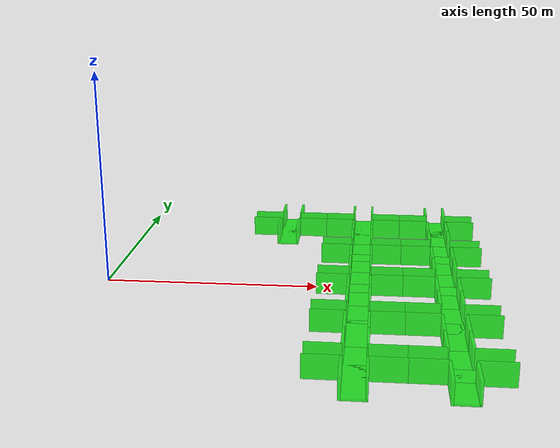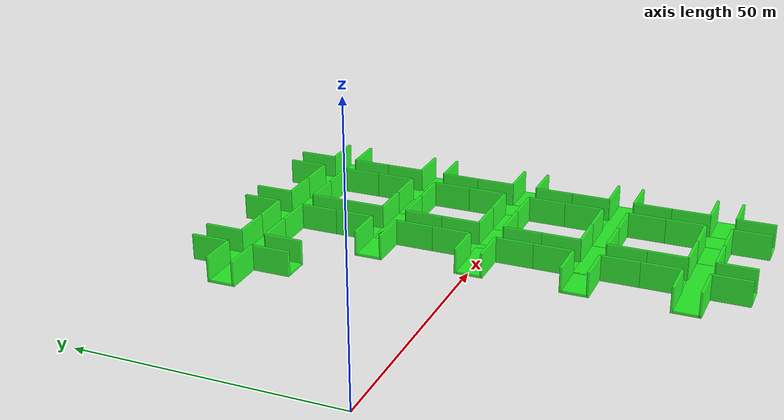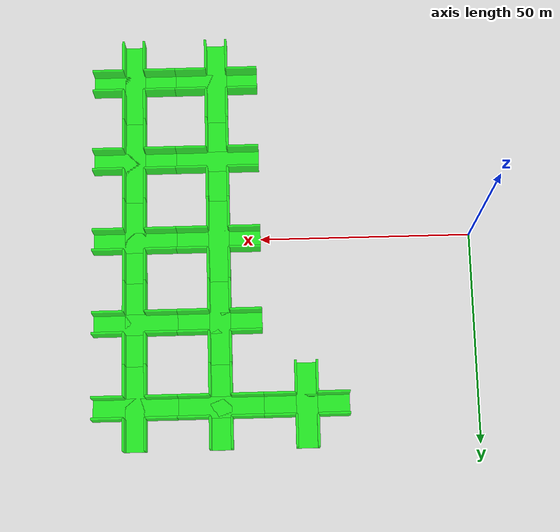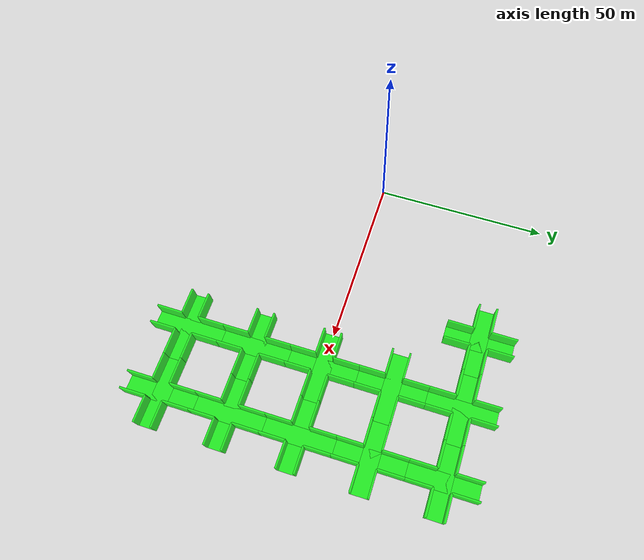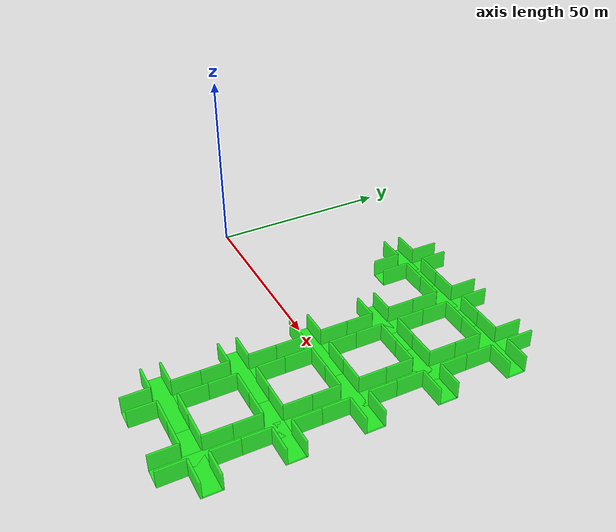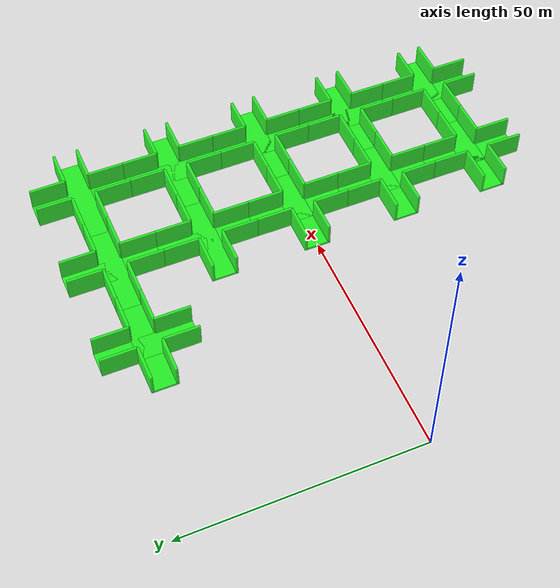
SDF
<sdf version="1.6">
 <world name="default">
  <model name="tile_10">
   <pose>40 40 0 0 0 0</pose>
   <static>true</static>
   <link name="link">
    <collision name="collision_0">
     <pose>0 0 -0.25 0 0 0</pose>
     <geometry><box><size>5 20 0.5</size></box></geometry>
    </collision>
    <visual name="visual_0">
     <pose>0 0 -0.25 0 0 0</pose>
     <geometry><box><size>5 20 0.5</size></box></geometry>
     <material><ambient>0 1 0 0.8</ambient><diffuse>0 1 0 0.8</diffuse><specular>1 1 1 0.8</specular></material>
    </visual>
    <collision name="collision_1">
     <pose>0 0 -0.25 0 0 1.57</pose>
     <geometry><box><size>5 20 0.5</size></box></geometry>
    </collision>
    <visual name="visual_1">
     <pose>0 0 -0.25 0 0 1.57</pose>
     <geometry><box><size>5 20 0.5</size></box></geometry>
     <material><ambient>0 1 0 0.8</ambient><diffuse>0 1 0 0.8</diffuse><specular>1 1 1 0.8</specular></material>
    </visual>
    <collision name="collision_2">
     <pose>-2.5 6.25 2 3.14 -1.57 0</pose>
     <geometry><box><size>5 7.5 0.5</size></box></geometry>
    </collision>
    <visual name="visual_2">
     <pose>-2.5 6.25 2 3.14 -1.57 0</pose>
     <geometry><box><size>5 7.5 0.5</size></box></geometry>
     <material><ambient>0 1 0 0.8</ambient><diffuse>0 1 0 0.8</diffuse><specular>1 1 1 0.8</specular></material>
    </visual>
    <collision name="collision_3">
     <pose>2.5 6.25 2 3.14 -1.57 0</pose>
     <geometry><box><size>5 7.5 0.5</size></box></geometry>
    </collision>
    <visual name="visual_3">
     <pose>2.5 6.25 2 3.14 -1.57 0</pose>
     <geometry><box><size>5 7.5 0.5</size></box></geometry>
     <material><ambient>0 1 0 0.8</ambient><diffuse>0 1 0 0.8</diffuse><specular>1 1 1 0.8</specular></material>
    </visual>
    <collision name="collision_4">
     <pose>-2.5 -6.25 2 3.14 -1.57 0</pose>
     <geometry><box><size>5 7.5 0.5</size></box></geometry>
    </collision>
    <visual name="visual_4">
     <pose>-2.5 -6.25 2 3.14 -1.57 0</pose>
     <geometry><box><size>5 7.5 0.5</size></box></geometry>
     <material><ambient>0 1 0 0.8</ambient><diffuse>0 1 0 0.8</diffuse><specular>1 1 1 0.8</specular></material>
    </visual>
    <collision name="collision_5">
     <pose>2.5 -6.25 2 3.14 -1.57 0</pose>
     <geometry><box><size>5 7.5 0.5</size></box></geometry>
    </collision>
    <visual name="visual_5">
     <pose>2.5 -6.25 2 3.14 -1.57 0</pose>
     <geometry><box><size>5 7.5 0.5</size></box></geometry>
     <material><ambient>0 1 0 0.8</ambient><diffuse>0 1 0 0.8</diffuse><specular>1 1 1 0.8</specular></material>
    </visual>
    <collision name="collision_6">
     <pose>6.25 2.5 2 1.57 1.57 0</pose>
     <geometry><box><size>5 7.5 0.5</size></box></geometry>
    </collision>
    <visual name="visual_6">
     <pose>6.25 2.5 2 1.57 1.57 0</pose>
     <geometry><box><size>5 7.5 0.5</size></box></geometry>
     <material><ambient>0 1 0 0.8</ambient><diffuse>0 1 0 0.8</diffuse><specular>1 1 1 0.8</specular></material>
    </visual>
    <collision name="collision_7">
     <pose>-6.25 2.5 2 1.57 1.57 0</pose>
     <geometry><box><size>5 7.5 0.5</size></box></geometry>
    </collision>
    <visual name="visual_7">
     <pose>-6.25 2.5 2 1.57 1.57 0</pose>
     <geometry><box><size>5 7.5 0.5</size></box></geometry>
     <material><ambient>0 1 0 0.8</ambient><diffuse>0 1 0 0.8</diffuse><specular>1 1 1 0.8</specular></material>
    </visual>
    <collision name="collision_8">
     <pose>6.25 -2.5 2 1.57 1.57 0</pose>
     <geometry><box><size>5 7.5 0.5</size></box></geometry>
    </collision>
    <visual name="visual_8">
     <pose>6.25 -2.5 2 1.57 1.57 0</pose>
     <geometry><box><size>5 7.5 0.5</size></box></geometry>
     <material><ambient>0 1 0 0.8</ambient><diffuse>0 1 0 0.8</diffuse><specular>1 1 1 0.8</specular></material>
    </visual>
    <collision name="collision_9">
     <pose>-6.25 -2.5 2 1.57 1.57 0</pose>
     <geometry><box><size>5 7.5 0.5</size></box></geometry>
    </collision>
    <visual name="visual_9">
     <pose>-6.25 -2.5 2 1.57 1.57 0</pose>
     <geometry><box><size>5 7.5 0.5</size></box></geometry>
     <material><ambient>0 1 0 0.8</ambient><diffuse>0 1 0 0.8</diffuse><specular>1 1 1 0.8</specular></material>
    </visual>
   </link>
  </model>
  <model name="tile_11">
   <pose>60 -40 0 0 0 3.141592653589793</pose>
   <static>true</static>
   <link name="link">
    <collision name="collision_0">
     <pose>0 0 -0.25 0 0 0</pose>
     <geometry><box><size>5 20 0.5</size></box></geometry>
    </collision>
    <visual name="visual_0">
     <pose>0 0 -0.25 0 0 0</pose>
     <geometry><box><size>5 20 0.5</size></box></geometry>
     <material><ambient>0 1 0 0.8</ambient><diffuse>0 1 0 0.8</diffuse><specular>1 1 1 0.8</specular></material>
    </visual>
    <collision name="collision_1">
     <pose>0 0 -0.25 0 0 1.57</pose>
     <geometry><box><size>5 20 0.5</size></box></geometry>
    </collision>
    <visual name="visual_1">
     <pose>0 0 -0.25 0 0 1.57</pose>
     <geometry><box><size>5 20 0.5</size></box></geometry>
     <material><ambient>0 1 0 0.8</ambient><diffuse>0 1 0 0.8</diffuse><specular>1 1 1 0.8</specular></material>
    </visual>
    <collision name="collision_2">
     <pose>-2.5 6.25 2 3.14 -1.57 0</pose>
     <geometry><box><size>5 7.5 0.5</size></box></geometry>
    </collision>
    <visual name="visual_2">
     <pose>-2.5 6.25 2 3.14 -1.57 0</pose>
     <geometry><box><size>5 7.5 0.5</size></box></geometry>
     <material><ambient>0 1 0 0.8</ambient><diffuse>0 1 0 0.8</diffuse><specular>1 1 1 0.8</specular></material>
    </visual>
    <collision name="collision_3">
     <pose>2.5 6.25 2 3.14 -1.57 0</pose>
     <geometry><box><size>5 7.5 0.5</size></box></geometry>
    </collision>
    <visual name="visual_3">
     <pose>2.5 6.25 2 3.14 -1.57 0</pose>
     <geometry><box><size>5 7.5 0.5</size></box></geometry>
     <material><ambient>0 1 0 0.8</ambient><diffuse>0 1 0 0.8</diffuse><specular>1 1 1 0.8</specular></material>
    </visual>
    <collision name="collision_4">
     <pose>-2.5 -6.25 2 3.14 -1.57 0</pose>
     <geometry><box><size>5 7.5 0.5</size></box></geometry>
    </collision>
    <visual name="visual_4">
     <pose>-2.5 -6.25 2 3.14 -1.57 0</pose>
     <geometry><box><size>5 7.5 0.5</size></box></geometry>
     <material><ambient>0 1 0 0.8</ambient><diffuse>0 1 0 0.8</diffuse><specular>1 1 1 0.8</specular></material>
    </visual>
    <collision name="collision_5">
     <pose>2.5 -6.25 2 3.14 -1.57 0</pose>
     <geometry><box><size>5 7.5 0.5</size></box></geometry>
    </collision>
    <visual name="visual_5">
     <pose>2.5 -6.25 2 3.14 -1.57 0</pose>
     <geometry><box><size>5 7.5 0.5</size></box></geometry>
     <material><ambient>0 1 0 0.8</ambient><diffuse>0 1 0 0.8</diffuse><specular>1 1 1 0.8</specular></material>
    </visual>
    <collision name="collision_6">
     <pose>6.25 2.5 2 1.57 1.57 0</pose>
     <geometry><box><size>5 7.5 0.5</size></box></geometry>
    </collision>
    <visual name="visual_6">
     <pose>6.25 2.5 2 1.57 1.57 0</pose>
     <geometry><box><size>5 7.5 0.5</size></box></geometry>
     <material><ambient>0 1 0 0.8</ambient><diffuse>0 1 0 0.8</diffuse><specular>1 1 1 0.8</specular></material>
    </visual>
    <collision name="collision_7">
     <pose>-6.25 2.5 2 1.57 1.57 0</pose>
     <geometry><box><size>5 7.5 0.5</size></box></geometry>
    </collision>
    <visual name="visual_7">
     <pose>-6.25 2.5 2 1.57 1.57 0</pose>
     <geometry><box><size>5 7.5 0.5</size></box></geometry>
     <material><ambient>0 1 0 0.8</ambient><diffuse>0 1 0 0.8</diffuse><specular>1 1 1 0.8</specular></material>
    </visual>
    <collision name="collision_8">
     <pose>6.25 -2.5 2 1.57 1.57 0</pose>
     <geometry><box><size>5 7.5 0.5</size></box></geometry>
    </collision>
    <visual name="visual_8">
     <pose>6.25 -2.5 2 1.57 1.57 0</pose>
     <geometry><box><size>5 7.5 0.5</size></box></geometry>
     <material><ambient>0 1 0 0.8</ambient><diffuse>0 1 0 0.8</diffuse><specular>1 1 1 0.8</specular></material>
    </visual>
    <collision name="collision_9">
     <pose>-6.25 -2.5 2 1.57 1.57 0</pose>
     <geometry><box><size>5 7.5 0.5</size></box></geometry>
    </collision>
    <visual name="visual_9">
     <pose>-6.25 -2.5 2 1.57 1.57 0</pose>
     <geometry><box><size>5 7.5 0.5</size></box></geometry>
     <material><ambient>0 1 0 0.8</ambient><diffuse>0 1 0 0.8</diffuse><specular>1 1 1 0.8</specular></material>
    </visual>
   </link>
  </model>
  <model name="tile_12">
   <pose>60 -20 0 0 0 1.5707963267948966</pose>
   <static>true</static>
   <link name="link">
    <collision name="collision_0">
     <pose>0 0 -0.25 0 0 0</pose>
     <geometry><box><size>5 20 0.5</size></box></geometry>
    </collision>
    <visual name="visual_0">
     <pose>0 0 -0.25 0 0 0</pose>
     <geometry><box><size>5 20 0.5</size></box></geometry>
     <material><ambient>0 1 0 0.8</ambient><diffuse>0 1 0 0.8</diffuse><specular>1 1 1 0.8</specular></material>
    </visual>
    <collision name="collision_1">
     <pose>0 0 -0.25 0 0 1.57</pose>
     <geometry><box><size>5 20 0.5</size></box></geometry>
    </collision>
    <visual name="visual_1">
     <pose>0 0 -0.25 0 0 1.57</pose>
     <geometry><box><size>5 20 0.5</size></box></geometry>
     <material><ambient>0 1 0 0.8</ambient><diffuse>0 1 0 0.8</diffuse><specular>1 1 1 0.8</specular></material>
    </visual>
    <collision name="collision_2">
     <pose>-2.5 6.25 2 3.14 -1.57 0</pose>
     <geometry><box><size>5 7.5 0.5</size></box></geometry>
    </collision>
    <visual name="visual_2">
     <pose>-2.5 6.25 2 3.14 -1.57 0</pose>
     <geometry><box><size>5 7.5 0.5</size></box></geometry>
     <material><ambient>0 1 0 0.8</ambient><diffuse>0 1 0 0.8</diffuse><specular>1 1 1 0.8</specular></material>
    </visual>
    <collision name="collision_3">
     <pose>2.5 6.25 2 3.14 -1.57 0</pose>
     <geometry><box><size>5 7.5 0.5</size></box></geometry>
    </collision>
    <visual name="visual_3">
     <pose>2.5 6.25 2 3.14 -1.57 0</pose>
     <geometry><box><size>5 7.5 0.5</size></box></geometry>
     <material><ambient>0 1 0 0.8</ambient><diffuse>0 1 0 0.8</diffuse><specular>1 1 1 0.8</specular></material>
    </visual>
    <collision name="collision_4">
     <pose>-2.5 -6.25 2 3.14 -1.57 0</pose>
     <geometry><box><size>5 7.5 0.5</size></box></geometry>
    </collision>
    <visual name="visual_4">
     <pose>-2.5 -6.25 2 3.14 -1.57 0</pose>
     <geometry><box><size>5 7.5 0.5</size></box></geometry>
     <material><ambient>0 1 0 0.8</ambient><diffuse>0 1 0 0.8</diffuse><specular>1 1 1 0.8</specular></material>
    </visual>
    <collision name="collision_5">
     <pose>2.5 -6.25 2 3.14 -1.57 0</pose>
     <geometry><box><size>5 7.5 0.5</size></box></geometry>
    </collision>
    <visual name="visual_5">
     <pose>2.5 -6.25 2 3.14 -1.57 0</pose>
     <geometry><box><size>5 7.5 0.5</size></box></geometry>
     <material><ambient>0 1 0 0.8</ambient><diffuse>0 1 0 0.8</diffuse><specular>1 1 1 0.8</specular></material>
    </visual>
    <collision name="collision_6">
     <pose>6.25 2.5 2 1.57 1.57 0</pose>
     <geometry><box><size>5 7.5 0.5</size></box></geometry>
    </collision>
    <visual name="visual_6">
     <pose>6.25 2.5 2 1.57 1.57 0</pose>
     <geometry><box><size>5 7.5 0.5</size></box></geometry>
     <material><ambient>0 1 0 0.8</ambient><diffuse>0 1 0 0.8</diffuse><specular>1 1 1 0.8</specular></material>
    </visual>
    <collision name="collision_7">
     <pose>-6.25 2.5 2 1.57 1.57 0</pose>
     <geometry><box><size>5 7.5 0.5</size></box></geometry>
    </collision>
    <visual name="visual_7">
     <pose>-6.25 2.5 2 1.57 1.57 0</pose>
     <geometry><box><size>5 7.5 0.5</size></box></geometry>
     <material><ambient>0 1 0 0.8</ambient><diffuse>0 1 0 0.8</diffuse><specular>1 1 1 0.8</specular></material>
    </visual>
    <collision name="collision_8">
     <pose>6.25 -2.5 2 1.57 1.57 0</pose>
     <geometry><box><size>5 7.5 0.5</size></box></geometry>
    </collision>
    <visual name="visual_8">
     <pose>6.25 -2.5 2 1.57 1.57 0</pose>
     <geometry><box><size>5 7.5 0.5</size></box></geometry>
     <material><ambient>0 1 0 0.8</ambient><diffuse>0 1 0 0.8</diffuse><specular>1 1 1 0.8</specular></material>
    </visual>
    <collision name="collision_9">
     <pose>-6.25 -2.5 2 1.57 1.57 0</pose>
     <geometry><box><size>5 7.5 0.5</size></box></geometry>
    </collision>
    <visual name="visual_9">
     <pose>-6.25 -2.5 2 1.57 1.57 0</pose>
     <geometry><box><size>5 7.5 0.5</size></box></geometry>
     <material><ambient>0 1 0 0.8</ambient><diffuse>0 1 0 0.8</diffuse><specular>1 1 1 0.8</specular></material>
    </visual>
   </link>
  </model>
  <model name="tile_13">
   <pose>60 0 0 0 0 -1.5707963267948966</pose>
   <static>true</static>
   <link name="link">
    <collision name="collision_0">
     <pose>0 0 -0.25 0 0 0</pose>
     <geometry><box><size>5 20 0.5</size></box></geometry>
    </collision>
    <visual name="visual_0">
     <pose>0 0 -0.25 0 0 0</pose>
     <geometry><box><size>5 20 0.5</size></box></geometry>
     <material><ambient>0 1 0 0.8</ambient><diffuse>0 1 0 0.8</diffuse><specular>1 1 1 0.8</specular></material>
    </visual>
    <collision name="collision_1">
     <pose>0 0 -0.25 0 0 1.57</pose>
     <geometry><box><size>5 20 0.5</size></box></geometry>
    </collision>
    <visual name="visual_1">
     <pose>0 0 -0.25 0 0 1.57</pose>
     <geometry><box><size>5 20 0.5</size></box></geometry>
     <material><ambient>0 1 0 0.8</ambient><diffuse>0 1 0 0.8</diffuse><specular>1 1 1 0.8</specular></material>
    </visual>
    <collision name="collision_2">
     <pose>-2.5 6.25 2 3.14 -1.57 0</pose>
     <geometry><box><size>5 7.5 0.5</size></box></geometry>
    </collision>
    <visual name="visual_2">
     <pose>-2.5 6.25 2 3.14 -1.57 0</pose>
     <geometry><box><size>5 7.5 0.5</size></box></geometry>
     <material><ambient>0 1 0 0.8</ambient><diffuse>0 1 0 0.8</diffuse><specular>1 1 1 0.8</specular></material>
    </visual>
    <collision name="collision_3">
     <pose>2.5 6.25 2 3.14 -1.57 0</pose>
     <geometry><box><size>5 7.5 0.5</size></box></geometry>
    </collision>
    <visual name="visual_3">
     <pose>2.5 6.25 2 3.14 -1.57 0</pose>
     <geometry><box><size>5 7.5 0.5</size></box></geometry>
     <material><ambient>0 1 0 0.8</ambient><diffuse>0 1 0 0.8</diffuse><specular>1 1 1 0.8</specular></material>
    </visual>
    <collision name="collision_4">
     <pose>-2.5 -6.25 2 3.14 -1.57 0</pose>
     <geometry><box><size>5 7.5 0.5</size></box></geometry>
    </collision>
    <visual name="visual_4">
     <pose>-2.5 -6.25 2 3.14 -1.57 0</pose>
     <geometry><box><size>5 7.5 0.5</size></box></geometry>
     <material><ambient>0 1 0 0.8</ambient><diffuse>0 1 0 0.8</diffuse><specular>1 1 1 0.8</specular></material>
    </visual>
    <collision name="collision_5">
     <pose>2.5 -6.25 2 3.14 -1.57 0</pose>
     <geometry><box><size>5 7.5 0.5</size></box></geometry>
    </collision>
    <visual name="visual_5">
     <pose>2.5 -6.25 2 3.14 -1.57 0</pose>
     <geometry><box><size>5 7.5 0.5</size></box></geometry>
     <material><ambient>0 1 0 0.8</ambient><diffuse>0 1 0 0.8</diffuse><specular>1 1 1 0.8</specular></material>
    </visual>
    <collision name="collision_6">
     <pose>6.25 2.5 2 1.57 1.57 0</pose>
     <geometry><box><size>5 7.5 0.5</size></box></geometry>
    </collision>
    <visual name="visual_6">
     <pose>6.25 2.5 2 1.57 1.57 0</pose>
     <geometry><box><size>5 7.5 0.5</size></box></geometry>
     <material><ambient>0 1 0 0.8</ambient><diffuse>0 1 0 0.8</diffuse><specular>1 1 1 0.8</specular></material>
    </visual>
    <collision name="collision_7">
     <pose>-6.25 2.5 2 1.57 1.57 0</pose>
     <geometry><box><size>5 7.5 0.5</size></box></geometry>
    </collision>
    <visual name="visual_7">
     <pose>-6.25 2.5 2 1.57 1.57 0</pose>
     <geometry><box><size>5 7.5 0.5</size></box></geometry>
     <material><ambient>0 1 0 0.8</ambient><diffuse>0 1 0 0.8</diffuse><specular>1 1 1 0.8</specular></material>
    </visual>
    <collision name="collision_8">
     <pose>6.25 -2.5 2 1.57 1.57 0</pose>
     <geometry><box><size>5 7.5 0.5</size></box></geometry>
    </collision>
    <visual name="visual_8">
     <pose>6.25 -2.5 2 1.57 1.57 0</pose>
     <geometry><box><size>5 7.5 0.5</size></box></geometry>
     <material><ambient>0 1 0 0.8</ambient><diffuse>0 1 0 0.8</diffuse><specular>1 1 1 0.8</specular></material>
    </visual>
    <collision name="collision_9">
     <pose>-6.25 -2.5 2 1.57 1.57 0</pose>
     <geometry><box><size>5 7.5 0.5</size></box></geometry>
    </collision>
    <visual name="visual_9">
     <pose>-6.25 -2.5 2 1.57 1.57 0</pose>
     <geometry><box><size>5 7.5 0.5</size></box></geometry>
     <material><ambient>0 1 0 0.8</ambient><diffuse>0 1 0 0.8</diffuse><specular>1 1 1 0.8</specular></material>
    </visual>
   </link>
  </model>
  <model name="tile_14">
   <pose>60 20 0 0 0 0</pose>
   <static>true</static>
   <link name="link">
    <collision name="collision_0">
     <pose>0 0 -0.25 0 0 0</pose>
     <geometry><box><size>5 20 0.5</size></box></geometry>
    </collision>
    <visual name="visual_0">
     <pose>0 0 -0.25 0 0 0</pose>
     <geometry><box><size>5 20 0.5</size></box></geometry>
     <material><ambient>0 1 0 0.8</ambient><diffuse>0 1 0 0.8</diffuse><specular>1 1 1 0.8</specular></material>
    </visual>
    <collision name="collision_1">
     <pose>0 0 -0.25 0 0 1.57</pose>
     <geometry><box><size>5 20 0.5</size></box></geometry>
    </collision>
    <visual name="visual_1">
     <pose>0 0 -0.25 0 0 1.57</pose>
     <geometry><box><size>5 20 0.5</size></box></geometry>
     <material><ambient>0 1 0 0.8</ambient><diffuse>0 1 0 0.8</diffuse><specular>1 1 1 0.8</specular></material>
    </visual>
    <collision name="collision_2">
     <pose>-2.5 6.25 2 3.14 -1.57 0</pose>
     <geometry><box><size>5 7.5 0.5</size></box></geometry>
    </collision>
    <visual name="visual_2">
     <pose>-2.5 6.25 2 3.14 -1.57 0</pose>
     <geometry><box><size>5 7.5 0.5</size></box></geometry>
     <material><ambient>0 1 0 0.8</ambient><diffuse>0 1 0 0.8</diffuse><specular>1 1 1 0.8</specular></material>
    </visual>
    <collision name="collision_3">
     <pose>2.5 6.25 2 3.14 -1.57 0</pose>
     <geometry><box><size>5 7.5 0.5</size></box></geometry>
    </collision>
    <visual name="visual_3">
     <pose>2.5 6.25 2 3.14 -1.57 0</pose>
     <geometry><box><size>5 7.5 0.5</size></box></geometry>
     <material><ambient>0 1 0 0.8</ambient><diffuse>0 1 0 0.8</diffuse><specular>1 1 1 0.8</specular></material>
    </visual>
    <collision name="collision_4">
     <pose>-2.5 -6.25 2 3.14 -1.57 0</pose>
     <geometry><box><size>5 7.5 0.5</size></box></geometry>
    </collision>
    <visual name="visual_4">
     <pose>-2.5 -6.25 2 3.14 -1.57 0</pose>
     <geometry><box><size>5 7.5 0.5</size></box></geometry>
     <material><ambient>0 1 0 0.8</ambient><diffuse>0 1 0 0.8</diffuse><specular>1 1 1 0.8</specular></material>
    </visual>
    <collision name="collision_5">
     <pose>2.5 -6.25 2 3.14 -1.57 0</pose>
     <geometry><box><size>5 7.5 0.5</size></box></geometry>
    </collision>
    <visual name="visual_5">
     <pose>2.5 -6.25 2 3.14 -1.57 0</pose>
     <geometry><box><size>5 7.5 0.5</size></box></geometry>
     <material><ambient>0 1 0 0.8</ambient><diffuse>0 1 0 0.8</diffuse><specular>1 1 1 0.8</specular></material>
    </visual>
    <collision name="collision_6">
     <pose>6.25 2.5 2 1.57 1.57 0</pose>
     <geometry><box><size>5 7.5 0.5</size></box></geometry>
    </collision>
    <visual name="visual_6">
     <pose>6.25 2.5 2 1.57 1.57 0</pose>
     <geometry><box><size>5 7.5 0.5</size></box></geometry>
     <material><ambient>0 1 0 0.8</ambient><diffuse>0 1 0 0.8</diffuse><specular>1 1 1 0.8</specular></material>
    </visual>
    <collision name="collision_7">
     <pose>-6.25 2.5 2 1.57 1.57 0</pose>
     <geometry><box><size>5 7.5 0.5</size></box></geometry>
    </collision>
    <visual name="visual_7">
     <pose>-6.25 2.5 2 1.57 1.57 0</pose>
     <geometry><box><size>5 7.5 0.5</size></box></geometry>
     <material><ambient>0 1 0 0.8</ambient><diffuse>0 1 0 0.8</diffuse><specular>1 1 1 0.8</specular></material>
    </visual>
    <collision name="collision_8">
     <pose>6.25 -2.5 2 1.57 1.57 0</pose>
     <geometry><box><size>5 7.5 0.5</size></box></geometry>
    </collision>
    <visual name="visual_8">
     <pose>6.25 -2.5 2 1.57 1.57 0</pose>
     <geometry><box><size>5 7.5 0.5</size></box></geometry>
     <material><ambient>0 1 0 0.8</ambient><diffuse>0 1 0 0.8</diffuse><specular>1 1 1 0.8</specular></material>
    </visual>
    <collision name="collision_9">
     <pose>-6.25 -2.5 2 1.57 1.57 0</pose>
     <geometry><box><size>5 7.5 0.5</size></box></geometry>
    </collision>
    <visual name="visual_9">
     <pose>-6.25 -2.5 2 1.57 1.57 0</pose>
     <geometry><box><size>5 7.5 0.5</size></box></geometry>
     <material><ambient>0 1 0 0.8</ambient><diffuse>0 1 0 0.8</diffuse><specular>1 1 1 0.8</specular></material>
    </visual>
   </link>
  </model>
  <model name="tile_15">
   <pose>60 40 0 0 0 0</pose>
   <static>true</static>
   <link name="link">
    <collision name="collision_0">
     <pose>0 0 -0.25 0 0 0</pose>
     <geometry><box><size>5 20 0.5</size></box></geometry>
    </collision>
    <visual name="visual_0">
     <pose>0 0 -0.25 0 0 0</pose>
     <geometry><box><size>5 20 0.5</size></box></geometry>
     <material><ambient>0 1 0 0.8</ambient><diffuse>0 1 0 0.8</diffuse><specular>1 1 1 0.8</specular></material>
    </visual>
    <collision name="collision_1">
     <pose>0 0 -0.25 0 0 1.57</pose>
     <geometry><box><size>5 20 0.5</size></box></geometry>
    </collision>
    <visual name="visual_1">
     <pose>0 0 -0.25 0 0 1.57</pose>
     <geometry><box><size>5 20 0.5</size></box></geometry>
     <material><ambient>0 1 0 0.8</ambient><diffuse>0 1 0 0.8</diffuse><specular>1 1 1 0.8</specular></material>
    </visual>
    <collision name="collision_2">
     <pose>-2.5 6.25 2 3.14 -1.57 0</pose>
     <geometry><box><size>5 7.5 0.5</size></box></geometry>
    </collision>
    <visual name="visual_2">
     <pose>-2.5 6.25 2 3.14 -1.57 0</pose>
     <geometry><box><size>5 7.5 0.5</size></box></geometry>
     <material><ambient>0 1 0 0.8</ambient><diffuse>0 1 0 0.8</diffuse><specular>1 1 1 0.8</specular></material>
    </visual>
    <collision name="collision_3">
     <pose>2.5 6.25 2 3.14 -1.57 0</pose>
     <geometry><box><size>5 7.5 0.5</size></box></geometry>
    </collision>
    <visual name="visual_3">
     <pose>2.5 6.25 2 3.14 -1.57 0</pose>
     <geometry><box><size>5 7.5 0.5</size></box></geometry>
     <material><ambient>0 1 0 0.8</ambient><diffuse>0 1 0 0.8</diffuse><specular>1 1 1 0.8</specular></material>
    </visual>
    <collision name="collision_4">
     <pose>-2.5 -6.25 2 3.14 -1.57 0</pose>
     <geometry><box><size>5 7.5 0.5</size></box></geometry>
    </collision>
    <visual name="visual_4">
     <pose>-2.5 -6.25 2 3.14 -1.57 0</pose>
     <geometry><box><size>5 7.5 0.5</size></box></geometry>
     <material><ambient>0 1 0 0.8</ambient><diffuse>0 1 0 0.8</diffuse><specular>1 1 1 0.8</specular></material>
    </visual>
    <collision name="collision_5">
     <pose>2.5 -6.25 2 3.14 -1.57 0</pose>
     <geometry><box><size>5 7.5 0.5</size></box></geometry>
    </collision>
    <visual name="visual_5">
     <pose>2.5 -6.25 2 3.14 -1.57 0</pose>
     <geometry><box><size>5 7.5 0.5</size></box></geometry>
     <material><ambient>0 1 0 0.8</ambient><diffuse>0 1 0 0.8</diffuse><specular>1 1 1 0.8</specular></material>
    </visual>
    <collision name="collision_6">
     <pose>6.25 2.5 2 1.57 1.57 0</pose>
     <geometry><box><size>5 7.5 0.5</size></box></geometry>
    </collision>
    <visual name="visual_6">
     <pose>6.25 2.5 2 1.57 1.57 0</pose>
     <geometry><box><size>5 7.5 0.5</size></box></geometry>
     <material><ambient>0 1 0 0.8</ambient><diffuse>0 1 0 0.8</diffuse><specular>1 1 1 0.8</specular></material>
    </visual>
    <collision name="collision_7">
     <pose>-6.25 2.5 2 1.57 1.57 0</pose>
     <geometry><box><size>5 7.5 0.5</size></box></geometry>
    </collision>
    <visual name="visual_7">
     <pose>-6.25 2.5 2 1.57 1.57 0</pose>
     <geometry><box><size>5 7.5 0.5</size></box></geometry>
     <material><ambient>0 1 0 0.8</ambient><diffuse>0 1 0 0.8</diffuse><specular>1 1 1 0.8</specular></material>
    </visual>
    <collision name="collision_8">
     <pose>6.25 -2.5 2 1.57 1.57 0</pose>
     <geometry><box><size>5 7.5 0.5</size></box></geometry>
    </collision>
    <visual name="visual_8">
     <pose>6.25 -2.5 2 1.57 1.57 0</pose>
     <geometry><box><size>5 7.5 0.5</size></box></geometry>
     <material><ambient>0 1 0 0.8</ambient><diffuse>0 1 0 0.8</diffuse><specular>1 1 1 0.8</specular></material>
    </visual>
    <collision name="collision_9">
     <pose>-6.25 -2.5 2 1.57 1.57 0</pose>
     <geometry><box><size>5 7.5 0.5</size></box></geometry>
    </collision>
    <visual name="visual_9">
     <pose>-6.25 -2.5 2 1.57 1.57 0</pose>
     <geometry><box><size>5 7.5 0.5</size></box></geometry>
     <material><ambient>0 1 0 0.8</ambient><diffuse>0 1 0 0.8</diffuse><specular>1 1 1 0.8</specular></material>
    </visual>
   </link>
  </model>
  <model name="tile_16">
   <pose>80 -40 0 0 0 -1.5707963267948966</pose>
   <static>true</static>
   <link name="link">
    <collision name="collision_0">
     <pose>0 0 -0.25 0 0 0</pose>
     <geometry><box><size>5 20 0.5</size></box></geometry>
    </collision>
    <visual name="visual_0">
     <pose>0 0 -0.25 0 0 0</pose>
     <geometry><box><size>5 20 0.5</size></box></geometry>
     <material><ambient>0 1 0 0.8</ambient><diffuse>0 1 0 0.8</diffuse><specular>1 1 1 0.8</specular></material>
    </visual>
    <collision name="collision_1">
     <pose>0 0 -0.25 0 0 1.57</pose>
     <geometry><box><size>5 20 0.5</size></box></geometry>
    </collision>
    <visual name="visual_1">
     <pose>0 0 -0.25 0 0 1.57</pose>
     <geometry><box><size>5 20 0.5</size></box></geometry>
     <material><ambient>0 1 0 0.8</ambient><diffuse>0 1 0 0.8</diffuse><specular>1 1 1 0.8</specular></material>
    </visual>
    <collision name="collision_2">
     <pose>-2.5 6.25 2 3.14 -1.57 0</pose>
     <geometry><box><size>5 7.5 0.5</size></box></geometry>
    </collision>
    <visual name="visual_2">
     <pose>-2.5 6.25 2 3.14 -1.57 0</pose>
     <geometry><box><size>5 7.5 0.5</size></box></geometry>
     <material><ambient>0 1 0 0.8</ambient><diffuse>0 1 0 0.8</diffuse><specular>1 1 1 0.8</specular></material>
    </visual>
    <collision name="collision_3">
     <pose>2.5 6.25 2 3.14 -1.57 0</pose>
     <geometry><box><size>5 7.5 0.5</size></box></geometry>
    </collision>
    <visual name="visual_3">
     <pose>2.5 6.25 2 3.14 -1.57 0</pose>
     <geometry><box><size>5 7.5 0.5</size></box></geometry>
     <material><ambient>0 1 0 0.8</ambient><diffuse>0 1 0 0.8</diffuse><specular>1 1 1 0.8</specular></material>
    </visual>
    <collision name="collision_4">
     <pose>-2.5 -6.25 2 3.14 -1.57 0</pose>
     <geometry><box><size>5 7.5 0.5</size></box></geometry>
    </collision>
    <visual name="visual_4">
     <pose>-2.5 -6.25 2 3.14 -1.57 0</pose>
     <geometry><box><size>5 7.5 0.5</size></box></geometry>
     <material><ambient>0 1 0 0.8</ambient><diffuse>0 1 0 0.8</diffuse><specular>1 1 1 0.8</specular></material>
    </visual>
    <collision name="collision_5">
     <pose>2.5 -6.25 2 3.14 -1.57 0</pose>
     <geometry><box><size>5 7.5 0.5</size></box></geometry>
    </collision>
    <visual name="visual_5">
     <pose>2.5 -6.25 2 3.14 -1.57 0</pose>
     <geometry><box><size>5 7.5 0.5</size></box></geometry>
     <material><ambient>0 1 0 0.8</ambient><diffuse>0 1 0 0.8</diffuse><specular>1 1 1 0.8</specular></material>
    </visual>
    <collision name="collision_6">
     <pose>6.25 2.5 2 1.57 1.57 0</pose>
     <geometry><box><size>5 7.5 0.5</size></box></geometry>
    </collision>
    <visual name="visual_6">
     <pose>6.25 2.5 2 1.57 1.57 0</pose>
     <geometry><box><size>5 7.5 0.5</size></box></geometry>
     <material><ambient>0 1 0 0.8</ambient><diffuse>0 1 0 0.8</diffuse><specular>1 1 1 0.8</specular></material>
    </visual>
    <collision name="collision_7">
     <pose>-6.25 2.5 2 1.57 1.57 0</pose>
     <geometry><box><size>5 7.5 0.5</size></box></geometry>
    </collision>
    <visual name="visual_7">
     <pose>-6.25 2.5 2 1.57 1.57 0</pose>
     <geometry><box><size>5 7.5 0.5</size></box></geometry>
     <material><ambient>0 1 0 0.8</ambient><diffuse>0 1 0 0.8</diffuse><specular>1 1 1 0.8</specular></material>
    </visual>
    <collision name="collision_8">
     <pose>6.25 -2.5 2 1.57 1.57 0</pose>
     <geometry><box><size>5 7.5 0.5</size></box></geometry>
    </collision>
    <visual name="visual_8">
     <pose>6.25 -2.5 2 1.57 1.57 0</pose>
     <geometry><box><size>5 7.5 0.5</size></box></geometry>
     <material><ambient>0 1 0 0.8</ambient><diffuse>0 1 0 0.8</diffuse><specular>1 1 1 0.8</specular></material>
    </visual>
    <collision name="collision_9">
     <pose>-6.25 -2.5 2 1.57 1.57 0</pose>
     <geometry><box><size>5 7.5 0.5</size></box></geometry>
    </collision>
    <visual name="visual_9">
     <pose>-6.25 -2.5 2 1.57 1.57 0</pose>
     <geometry><box><size>5 7.5 0.5</size></box></geometry>
     <material><ambient>0 1 0 0.8</ambient><diffuse>0 1 0 0.8</diffuse><specular>1 1 1 0.8</specular></material>
    </visual>
   </link>
  </model>
  <model name="tile_17">
   <pose>80 -20 0 0 0 0</pose>
   <static>true</static>
   <link name="link">
    <collision name="collision_0">
     <pose>0 0 -0.25 0 0 0</pose>
     <geometry><box><size>5 20 0.5</size></box></geometry>
    </collision>
    <visual name="visual_0">
     <pose>0 0 -0.25 0 0 0</pose>
     <geometry><box><size>5 20 0.5</size></box></geometry>
     <material><ambient>0 1 0 0.8</ambient><diffuse>0 1 0 0.8</diffuse><specular>1 1 1 0.8</specular></material>
    </visual>
    <collision name="collision_1">
     <pose>0 0 -0.25 0 0 1.57</pose>
     <geometry><box><size>5 20 0.5</size></box></geometry>
    </collision>
    <visual name="visual_1">
     <pose>0 0 -0.25 0 0 1.57</pose>
     <geometry><box><size>5 20 0.5</size></box></geometry>
     <material><ambient>0 1 0 0.8</ambient><diffuse>0 1 0 0.8</diffuse><specular>1 1 1 0.8</specular></material>
    </visual>
    <collision name="collision_2">
     <pose>-2.5 6.25 2 3.14 -1.57 0</pose>
     <geometry><box><size>5 7.5 0.5</size></box></geometry>
    </collision>
    <visual name="visual_2">
     <pose>-2.5 6.25 2 3.14 -1.57 0</pose>
     <geometry><box><size>5 7.5 0.5</size></box></geometry>
     <material><ambient>0 1 0 0.8</ambient><diffuse>0 1 0 0.8</diffuse><specular>1 1 1 0.8</specular></material>
    </visual>
    <collision name="collision_3">
     <pose>2.5 6.25 2 3.14 -1.57 0</pose>
     <geometry><box><size>5 7.5 0.5</size></box></geometry>
    </collision>
    <visual name="visual_3">
     <pose>2.5 6.25 2 3.14 -1.57 0</pose>
     <geometry><box><size>5 7.5 0.5</size></box></geometry>
     <material><ambient>0 1 0 0.8</ambient><diffuse>0 1 0 0.8</diffuse><specular>1 1 1 0.8</specular></material>
    </visual>
    <collision name="collision_4">
     <pose>-2.5 -6.25 2 3.14 -1.57 0</pose>
     <geometry><box><size>5 7.5 0.5</size></box></geometry>
    </collision>
    <visual name="visual_4">
     <pose>-2.5 -6.25 2 3.14 -1.57 0</pose>
     <geometry><box><size>5 7.5 0.5</size></box></geometry>
     <material><ambient>0 1 0 0.8</ambient><diffuse>0 1 0 0.8</diffuse><specular>1 1 1 0.8</specular></material>
    </visual>
    <collision name="collision_5">
     <pose>2.5 -6.25 2 3.14 -1.57 0</pose>
     <geometry><box><size>5 7.5 0.5</size></box></geometry>
    </collision>
    <visual name="visual_5">
     <pose>2.5 -6.25 2 3.14 -1.57 0</pose>
     <geometry><box><size>5 7.5 0.5</size></box></geometry>
     <material><ambient>0 1 0 0.8</ambient><diffuse>0 1 0 0.8</diffuse><specular>1 1 1 0.8</specular></material>
    </visual>
    <collision name="collision_6">
     <pose>6.25 2.5 2 1.57 1.57 0</pose>
     <geometry><box><size>5 7.5 0.5</size></box></geometry>
    </collision>
    <visual name="visual_6">
     <pose>6.25 2.5 2 1.57 1.57 0</pose>
     <geometry><box><size>5 7.5 0.5</size></box></geometry>
     <material><ambient>0 1 0 0.8</ambient><diffuse>0 1 0 0.8</diffuse><specular>1 1 1 0.8</specular></material>
    </visual>
    <collision name="collision_7">
     <pose>-6.25 2.5 2 1.57 1.57 0</pose>
     <geometry><box><size>5 7.5 0.5</size></box></geometry>
    </collision>
    <visual name="visual_7">
     <pose>-6.25 2.5 2 1.57 1.57 0</pose>
     <geometry><box><size>5 7.5 0.5</size></box></geometry>
     <material><ambient>0 1 0 0.8</ambient><diffuse>0 1 0 0.8</diffuse><specular>1 1 1 0.8</specular></material>
    </visual>
    <collision name="collision_8">
     <pose>6.25 -2.5 2 1.57 1.57 0</pose>
     <geometry><box><size>5 7.5 0.5</size></box></geometry>
    </collision>
    <visual name="visual_8">
     <pose>6.25 -2.5 2 1.57 1.57 0</pose>
     <geometry><box><size>5 7.5 0.5</size></box></geometry>
     <material><ambient>0 1 0 0.8</ambient><diffuse>0 1 0 0.8</diffuse><specular>1 1 1 0.8</specular></material>
    </visual>
    <collision name="collision_9">
     <pose>-6.25 -2.5 2 1.57 1.57 0</pose>
     <geometry><box><size>5 7.5 0.5</size></box></geometry>
    </collision>
    <visual name="visual_9">
     <pose>-6.25 -2.5 2 1.57 1.57 0</pose>
     <geometry><box><size>5 7.5 0.5</size></box></geometry>
     <material><ambient>0 1 0 0.8</ambient><diffuse>0 1 0 0.8</diffuse><specular>1 1 1 0.8</specular></material>
    </visual>
   </link>
  </model>
  <model name="tile_18">
   <pose>80 0 0 0 0 -1.5707963267948966</pose>
   <static>true</static>
   <link name="link">
    <collision name="collision_0">
     <pose>0 0 -0.25 0 0 0</pose>
     <geometry><box><size>5 20 0.5</size></box></geometry>
    </collision>
    <visual name="visual_0">
     <pose>0 0 -0.25 0 0 0</pose>
     <geometry><box><size>5 20 0.5</size></box></geometry>
     <material><ambient>0 1 0 0.8</ambient><diffuse>0 1 0 0.8</diffuse><specular>1 1 1 0.8</specular></material>
    </visual>
    <collision name="collision_1">
     <pose>0 0 -0.25 0 0 1.57</pose>
     <geometry><box><size>5 20 0.5</size></box></geometry>
    </collision>
    <visual name="visual_1">
     <pose>0 0 -0.25 0 0 1.57</pose>
     <geometry><box><size>5 20 0.5</size></box></geometry>
     <material><ambient>0 1 0 0.8</ambient><diffuse>0 1 0 0.8</diffuse><specular>1 1 1 0.8</specular></material>
    </visual>
    <collision name="collision_2">
     <pose>-2.5 6.25 2 3.14 -1.57 0</pose>
     <geometry><box><size>5 7.5 0.5</size></box></geometry>
    </collision>
    <visual name="visual_2">
     <pose>-2.5 6.25 2 3.14 -1.57 0</pose>
     <geometry><box><size>5 7.5 0.5</size></box></geometry>
     <material><ambient>0 1 0 0.8</ambient><diffuse>0 1 0 0.8</diffuse><specular>1 1 1 0.8</specular></material>
    </visual>
    <collision name="collision_3">
     <pose>2.5 6.25 2 3.14 -1.57 0</pose>
     <geometry><box><size>5 7.5 0.5</size></box></geometry>
    </collision>
    <visual name="visual_3">
     <pose>2.5 6.25 2 3.14 -1.57 0</pose>
     <geometry><box><size>5 7.5 0.5</size></box></geometry>
     <material><ambient>0 1 0 0.8</ambient><diffuse>0 1 0 0.8</diffuse><specular>1 1 1 0.8</specular></material>
    </visual>
    <collision name="collision_4">
     <pose>-2.5 -6.25 2 3.14 -1.57 0</pose>
     <geometry><box><size>5 7.5 0.5</size></box></geometry>
    </collision>
    <visual name="visual_4">
     <pose>-2.5 -6.25 2 3.14 -1.57 0</pose>
     <geometry><box><size>5 7.5 0.5</size></box></geometry>
     <material><ambient>0 1 0 0.8</ambient><diffuse>0 1 0 0.8</diffuse><specular>1 1 1 0.8</specular></material>
    </visual>
    <collision name="collision_5">
     <pose>2.5 -6.25 2 3.14 -1.57 0</pose>
     <geometry><box><size>5 7.5 0.5</size></box></geometry>
    </collision>
    <visual name="visual_5">
     <pose>2.5 -6.25 2 3.14 -1.57 0</pose>
     <geometry><box><size>5 7.5 0.5</size></box></geometry>
     <material><ambient>0 1 0 0.8</ambient><diffuse>0 1 0 0.8</diffuse><specular>1 1 1 0.8</specular></material>
    </visual>
    <collision name="collision_6">
     <pose>6.25 2.5 2 1.57 1.57 0</pose>
     <geometry><box><size>5 7.5 0.5</size></box></geometry>
    </collision>
    <visual name="visual_6">
     <pose>6.25 2.5 2 1.57 1.57 0</pose>
     <geometry><box><size>5 7.5 0.5</size></box></geometry>
     <material><ambient>0 1 0 0.8</ambient><diffuse>0 1 0 0.8</diffuse><specular>1 1 1 0.8</specular></material>
    </visual>
    <collision name="collision_7">
     <pose>-6.25 2.5 2 1.57 1.57 0</pose>
     <geometry><box><size>5 7.5 0.5</size></box></geometry>
    </collision>
    <visual name="visual_7">
     <pose>-6.25 2.5 2 1.57 1.57 0</pose>
     <geometry><box><size>5 7.5 0.5</size></box></geometry>
     <material><ambient>0 1 0 0.8</ambient><diffuse>0 1 0 0.8</diffuse><specular>1 1 1 0.8</specular></material>
    </visual>
    <collision name="collision_8">
     <pose>6.25 -2.5 2 1.57 1.57 0</pose>
     <geometry><box><size>5 7.5 0.5</size></box></geometry>
    </collision>
    <visual name="visual_8">
     <pose>6.25 -2.5 2 1.57 1.57 0</pose>
     <geometry><box><size>5 7.5 0.5</size></box></geometry>
     <material><ambient>0 1 0 0.8</ambient><diffuse>0 1 0 0.8</diffuse><specular>1 1 1 0.8</specular></material>
    </visual>
    <collision name="collision_9">
     <pose>-6.25 -2.5 2 1.57 1.57 0</pose>
     <geometry><box><size>5 7.5 0.5</size></box></geometry>
    </collision>
    <visual name="visual_9">
     <pose>-6.25 -2.5 2 1.57 1.57 0</pose>
     <geometry><box><size>5 7.5 0.5</size></box></geometry>
     <material><ambient>0 1 0 0.8</ambient><diffuse>0 1 0 0.8</diffuse><specular>1 1 1 0.8</specular></material>
    </visual>
   </link>
  </model>
  <model name="tile_19">
   <pose>80 20 0 0 0 0</pose>
   <static>true</static>
   <link name="link">
    <collision name="collision_0">
     <pose>0 0 -0.25 0 0 0</pose>
     <geometry><box><size>5 20 0.5</size></box></geometry>
    </collision>
    <visual name="visual_0">
     <pose>0 0 -0.25 0 0 0</pose>
     <geometry><box><size>5 20 0.5</size></box></geometry>
     <material><ambient>0 1 0 0.8</ambient><diffuse>0 1 0 0.8</diffuse><specular>1 1 1 0.8</specular></material>
    </visual>
    <collision name="collision_1">
     <pose>0 0 -0.25 0 0 1.57</pose>
     <geometry><box><size>5 20 0.5</size></box></geometry>
    </collision>
    <visual name="visual_1">
     <pose>0 0 -0.25 0 0 1.57</pose>
     <geometry><box><size>5 20 0.5</size></box></geometry>
     <material><ambient>0 1 0 0.8</ambient><diffuse>0 1 0 0.8</diffuse><specular>1 1 1 0.8</specular></material>
    </visual>
    <collision name="collision_2">
     <pose>-2.5 6.25 2 3.14 -1.57 0</pose>
     <geometry><box><size>5 7.5 0.5</size></box></geometry>
    </collision>
    <visual name="visual_2">
     <pose>-2.5 6.25 2 3.14 -1.57 0</pose>
     <geometry><box><size>5 7.5 0.5</size></box></geometry>
     <material><ambient>0 1 0 0.8</ambient><diffuse>0 1 0 0.8</diffuse><specular>1 1 1 0.8</specular></material>
    </visual>
    <collision name="collision_3">
     <pose>2.5 6.25 2 3.14 -1.57 0</pose>
     <geometry><box><size>5 7.5 0.5</size></box></geometry>
    </collision>
    <visual name="visual_3">
     <pose>2.5 6.25 2 3.14 -1.57 0</pose>
     <geometry><box><size>5 7.5 0.5</size></box></geometry>
     <material><ambient>0 1 0 0.8</ambient><diffuse>0 1 0 0.8</diffuse><specular>1 1 1 0.8</specular></material>
    </visual>
    <collision name="collision_4">
     <pose>-2.5 -6.25 2 3.14 -1.57 0</pose>
     <geometry><box><size>5 7.5 0.5</size></box></geometry>
    </collision>
    <visual name="visual_4">
     <pose>-2.5 -6.25 2 3.14 -1.57 0</pose>
     <geometry><box><size>5 7.5 0.5</size></box></geometry>
     <material><ambient>0 1 0 0.8</ambient><diffuse>0 1 0 0.8</diffuse><specular>1 1 1 0.8</specular></material>
    </visual>
    <collision name="collision_5">
     <pose>2.5 -6.25 2 3.14 -1.57 0</pose>
     <geometry><box><size>5 7.5 0.5</size></box></geometry>
    </collision>
    <visual name="visual_5">
     <pose>2.5 -6.25 2 3.14 -1.57 0</pose>
     <geometry><box><size>5 7.5 0.5</size></box></geometry>
     <material><ambient>0 1 0 0.8</ambient><diffuse>0 1 0 0.8</diffuse><specular>1 1 1 0.8</specular></material>
    </visual>
    <collision name="collision_6">
     <pose>6.25 2.5 2 1.57 1.57 0</pose>
     <geometry><box><size>5 7.5 0.5</size></box></geometry>
    </collision>
    <visual name="visual_6">
     <pose>6.25 2.5 2 1.57 1.57 0</pose>
     <geometry><box><size>5 7.5 0.5</size></box></geometry>
     <material><ambient>0 1 0 0.8</ambient><diffuse>0 1 0 0.8</diffuse><specular>1 1 1 0.8</specular></material>
    </visual>
    <collision name="collision_7">
     <pose>-6.25 2.5 2 1.57 1.57 0</pose>
     <geometry><box><size>5 7.5 0.5</size></box></geometry>
    </collision>
    <visual name="visual_7">
     <pose>-6.25 2.5 2 1.57 1.57 0</pose>
     <geometry><box><size>5 7.5 0.5</size></box></geometry>
     <material><ambient>0 1 0 0.8</ambient><diffuse>0 1 0 0.8</diffuse><specular>1 1 1 0.8</specular></material>
    </visual>
    <collision name="collision_8">
     <pose>6.25 -2.5 2 1.57 1.57 0</pose>
     <geometry><box><size>5 7.5 0.5</size></box></geometry>
    </collision>
    <visual name="visual_8">
     <pose>6.25 -2.5 2 1.57 1.57 0</pose>
     <geometry><box><size>5 7.5 0.5</size></box></geometry>
     <material><ambient>0 1 0 0.8</ambient><diffuse>0 1 0 0.8</diffuse><specular>1 1 1 0.8</specular></material>
    </visual>
    <collision name="collision_9">
     <pose>-6.25 -2.5 2 1.57 1.57 0</pose>
     <geometry><box><size>5 7.5 0.5</size></box></geometry>
    </collision>
    <visual name="visual_9">
     <pose>-6.25 -2.5 2 1.57 1.57 0</pose>
     <geometry><box><size>5 7.5 0.5</size></box></geometry>
     <material><ambient>0 1 0 0.8</ambient><diffuse>0 1 0 0.8</diffuse><specular>1 1 1 0.8</specular></material>
    </visual>
   </link>
  </model>
  <model name="tile_20">
   <pose>80 40 0 0 0 -1.5707963267948966</pose>
   <static>true</static>
   <link name="link">
    <collision name="collision_0">
     <pose>0 0 -0.25 0 0 0</pose>
     <geometry><box><size>5 20 0.5</size></box></geometry>
    </collision>
    <visual name="visual_0">
     <pose>0 0 -0.25 0 0 0</pose>
     <geometry><box><size>5 20 0.5</size></box></geometry>
     <material><ambient>0 1 0 0.8</ambient><diffuse>0 1 0 0.8</diffuse><specular>1 1 1 0.8</specular></material>
    </visual>
    <collision name="collision_1">
     <pose>0 0 -0.25 0 0 1.57</pose>
     <geometry><box><size>5 20 0.5</size></box></geometry>
    </collision>
    <visual name="visual_1">
     <pose>0 0 -0.25 0 0 1.57</pose>
     <geometry><box><size>5 20 0.5</size></box></geometry>
     <material><ambient>0 1 0 0.8</ambient><diffuse>0 1 0 0.8</diffuse><specular>1 1 1 0.8</specular></material>
    </visual>
    <collision name="collision_2">
     <pose>-2.5 6.25 2 3.14 -1.57 0</pose>
     <geometry><box><size>5 7.5 0.5</size></box></geometry>
    </collision>
    <visual name="visual_2">
     <pose>-2.5 6.25 2 3.14 -1.57 0</pose>
     <geometry><box><size>5 7.5 0.5</size></box></geometry>
     <material><ambient>0 1 0 0.8</ambient><diffuse>0 1 0 0.8</diffuse><specular>1 1 1 0.8</specular></material>
    </visual>
    <collision name="collision_3">
     <pose>2.5 6.25 2 3.14 -1.57 0</pose>
     <geometry><box><size>5 7.5 0.5</size></box></geometry>
    </collision>
    <visual name="visual_3">
     <pose>2.5 6.25 2 3.14 -1.57 0</pose>
     <geometry><box><size>5 7.5 0.5</size></box></geometry>
     <material><ambient>0 1 0 0.8</ambient><diffuse>0 1 0 0.8</diffuse><specular>1 1 1 0.8</specular></material>
    </visual>
    <collision name="collision_4">
     <pose>-2.5 -6.25 2 3.14 -1.57 0</pose>
     <geometry><box><size>5 7.5 0.5</size></box></geometry>
    </collision>
    <visual name="visual_4">
     <pose>-2.5 -6.25 2 3.14 -1.57 0</pose>
     <geometry><box><size>5 7.5 0.5</size></box></geometry>
     <material><ambient>0 1 0 0.8</ambient><diffuse>0 1 0 0.8</diffuse><specular>1 1 1 0.8</specular></material>
    </visual>
    <collision name="collision_5">
     <pose>2.5 -6.25 2 3.14 -1.57 0</pose>
     <geometry><box><size>5 7.5 0.5</size></box></geometry>
    </collision>
    <visual name="visual_5">
     <pose>2.5 -6.25 2 3.14 -1.57 0</pose>
     <geometry><box><size>5 7.5 0.5</size></box></geometry>
     <material><ambient>0 1 0 0.8</ambient><diffuse>0 1 0 0.8</diffuse><specular>1 1 1 0.8</specular></material>
    </visual>
    <collision name="collision_6">
     <pose>6.25 2.5 2 1.57 1.57 0</pose>
     <geometry><box><size>5 7.5 0.5</size></box></geometry>
    </collision>
    <visual name="visual_6">
     <pose>6.25 2.5 2 1.57 1.57 0</pose>
     <geometry><box><size>5 7.5 0.5</size></box></geometry>
     <material><ambient>0 1 0 0.8</ambient><diffuse>0 1 0 0.8</diffuse><specular>1 1 1 0.8</specular></material>
    </visual>
    <collision name="collision_7">
     <pose>-6.25 2.5 2 1.57 1.57 0</pose>
     <geometry><box><size>5 7.5 0.5</size></box></geometry>
    </collision>
    <visual name="visual_7">
     <pose>-6.25 2.5 2 1.57 1.57 0</pose>
     <geometry><box><size>5 7.5 0.5</size></box></geometry>
     <material><ambient>0 1 0 0.8</ambient><diffuse>0 1 0 0.8</diffuse><specular>1 1 1 0.8</specular></material>
    </visual>
    <collision name="collision_8">
     <pose>6.25 -2.5 2 1.57 1.57 0</pose>
     <geometry><box><size>5 7.5 0.5</size></box></geometry>
    </collision>
    <visual name="visual_8">
     <pose>6.25 -2.5 2 1.57 1.57 0</pose>
     <geometry><box><size>5 7.5 0.5</size></box></geometry>
     <material><ambient>0 1 0 0.8</ambient><diffuse>0 1 0 0.8</diffuse><specular>1 1 1 0.8</specular></material>
    </visual>
    <collision name="collision_9">
     <pose>-6.25 -2.5 2 1.57 1.57 0</pose>
     <geometry><box><size>5 7.5 0.5</size></box></geometry>
    </collision>
    <visual name="visual_9">
     <pose>-6.25 -2.5 2 1.57 1.57 0</pose>
     <geometry><box><size>5 7.5 0.5</size></box></geometry>
     <material><ambient>0 1 0 0.8</ambient><diffuse>0 1 0 0.8</diffuse><specular>1 1 1 0.8</specular></material>
    </visual>
   </link>
  </model>
 </world>
</sdf>
